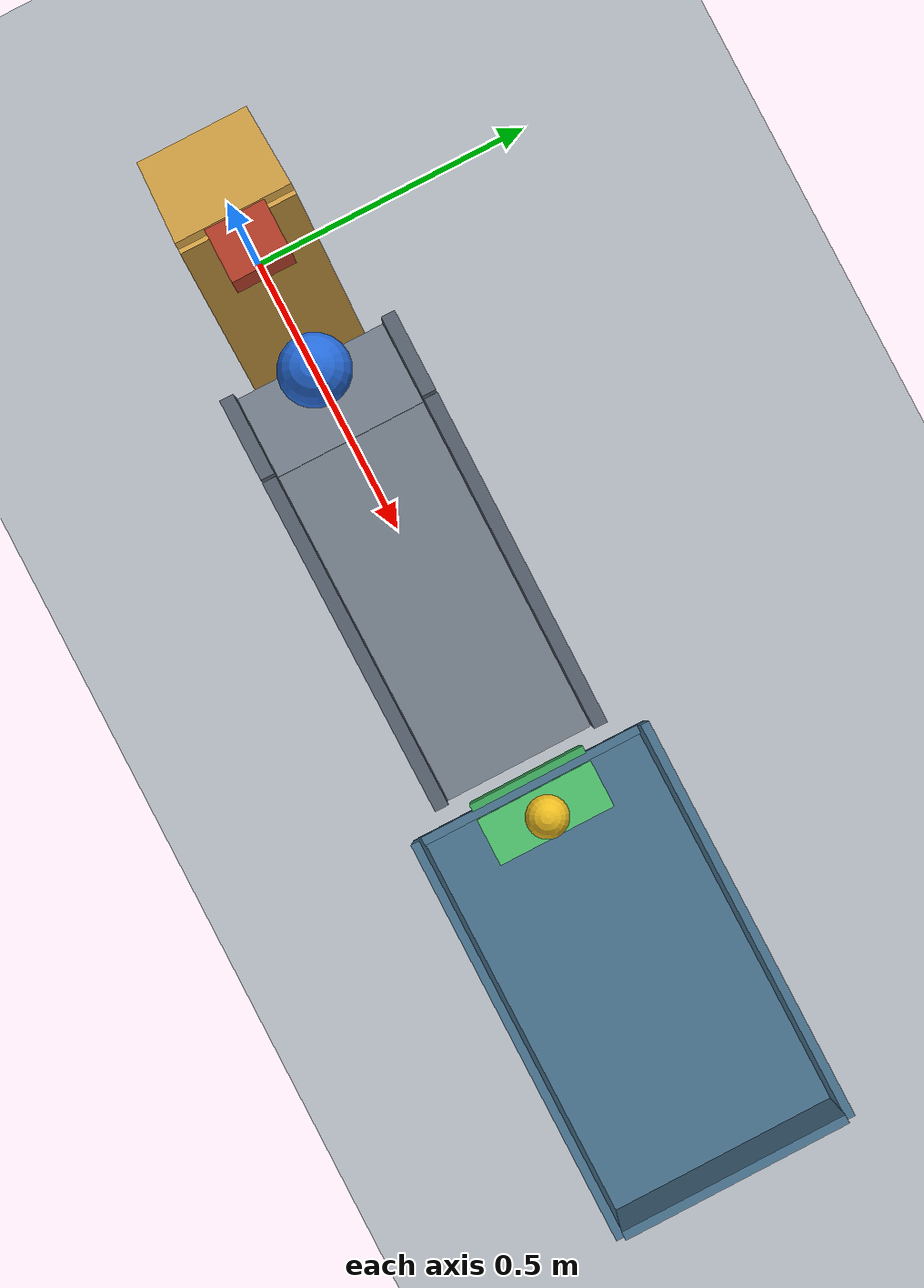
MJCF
<mujoco model="wedge_flap_release">
  <compiler angle="radian" autolimits="true"/>
  <option timestep="0.002" gravity="0 0 -9.81" integrator="implicitfast" solver="Newton" iterations="100" cone="elliptic" impratio="10"/>
  <size njmax="2000" nconmax="400"/>
  <visual>
    <headlight ambient="0.45 0.45 0.45" diffuse="0.7 0.7 0.7"/>
  </visual>

  <worldbody>
    <light name="overhead" pos="0.7 -1.5 2.5" dir="0 0 -1"/>
    <camera name="overview" pos="2.1 -2.6 1.8" xyaxes="0.88 0.47 0 -0.23 0.43 0.87"/>

    <geom name="floor" type="plane" size="3 3 0.1" friction="1.2 0.005 0.0001" solref="0.008 1" rgba="0.72 0.74 0.77 1"/>

    <!-- The block's underside starts 0.5 m above its first contact with the wedge. -->
    <body name="block" pos="0.14 0 0.818745">
      <freejoint name="block_free"/>
      <geom name="block_weight" type="box" size="0.04 0.045 0.04" mass="1.5" friction="1.2 0.005 0.0001" solref="0.006 1" rgba="0.72 0.24 0.16 1"/>
    </body>

    <!-- A loose, narrow-footed wedge assembled entirely from primitive solids. -->
    <body name="wedge" pos="0 0 0.03">
      <freejoint name="wedge_free"/>
      <geom name="wedge_foot" type="box" size="0.065 0.1 0.03" mass="0.07" friction="1.5 0.005 0.0001" solref="0.006 1" rgba="0.78 0.57 0.22 1"/>
      <geom name="wedge_stem" type="box" pos="0 0 0.064" size="0.025 0.085 0.034" mass="0.04" friction="1.2 0.005 0.0001" solref="0.006 1" rgba="0.78 0.57 0.22 1"/>
      <geom name="wedge_bottom" type="box" pos="0 0 0.11" size="0.20 0.1 0.012" mass="0.04" friction="1.2 0.005 0.0001" solref="0.006 1" rgba="0.85 0.65 0.28 1"/>
      <geom name="wedge_left_slope" type="box" pos="-0.1 0 0.23" quat="0.905589 0 -0.424155 0" size="0.156205 0.1 0.012" mass="0.05" friction="1.2 0.005 0.0001" solref="0.006 1" rgba="0.85 0.65 0.28 1"/>
      <geom name="wedge_right_slope" type="box" pos="0.1 0 0.23" quat="0.905589 0 0.424155 0" size="0.156205 0.1 0.012" mass="0.05" friction="1.2 0.005 0.0001" solref="0.006 1" rgba="0.85 0.65 0.28 1"/>
    </body>

    <!-- The level starting shelf keeps ball1 still until the wedge strikes it. -->
    <body name="ball1" pos="0.245 0 0.285">
      <freejoint name="ball1_free"/>
      <geom name="ball1_sphere" type="sphere" size="0.06" mass="0.30" friction="0.35 0.001 0.00002" solref="0.008 1" rgba="0.15 0.42 0.85 1"/>
    </body>

    <body name="ramp" pos="0 0 0">
      <geom name="ramp_start_shelf" type="box" pos="0.29 0 0.215" size="0.07 0.13 0.01" friction="0.35 0.001 0.00002" solref="0.008 1" rgba="0.47 0.51 0.56 1"/>
      <geom name="ramp_slope" type="box" pos="0.648974 0 0.174566" quat="0.997929 0 0.064264 0" size="0.292414 0.13 0.008" friction="0.35 0.001 0.00002" solref="0.008 1" rgba="0.47 0.51 0.56 1"/>
      <geom name="ramp_start_rail_left" type="box" pos="0.29 0.142 0.255" size="0.07 0.012 0.035" friction="0.35 0.001 0.00002" rgba="0.35 0.39 0.44 1"/>
      <geom name="ramp_start_rail_right" type="box" pos="0.29 -0.142 0.255" size="0.07 0.012 0.035" friction="0.35 0.001 0.00002" rgba="0.35 0.39 0.44 1"/>
      <geom name="ramp_slope_rail_left" type="box" pos="0.65 0.142 0.2145" quat="0.997929 0 0.064264 0" size="0.292414 0.012 0.04" friction="0.35 0.001 0.00002" rgba="0.35 0.39 0.44 1"/>
      <geom name="ramp_slope_rail_right" type="box" pos="0.65 -0.142 0.2145" quat="0.997929 0 0.064264 0" size="0.292414 0.012 0.04" friction="0.35 0.001 0.00002" rgba="0.35 0.39 0.44 1"/>
    </body>

    <!-- Hinge friction holds the loaded flap upright; ball1 supplies the release impulse. -->
    <body name="flap" pos="0.965 0 0.11">
      <joint name="flap_hinge" type="hinge" axis="0 1 0" limited="true" range="0 1.45" frictionloss="0.027" damping="0.001" armature="0.00002" solreflimit="0.006 1" solimplimit="0.98 0.999 0.001"/>
      <geom name="flap_striker_panel" type="box" pos="0 0 0.08" size="0.006 0.10 0.08" mass="0.020" friction="0.45 0.001 0.00002" solref="0.006 1" rgba="0.23 0.65 0.35 1"/>
      <geom name="flap_release_shelf" type="box" pos="0.060 0 0.164" size="0.040 0.10 0.005" mass="0.008" friction="0.18 0.001 0.00002" solref="0.006 1" rgba="0.30 0.75 0.42 1"/>
    </body>

    <body name="ball2" pos="1.030 0 0.314">
      <freejoint name="ball2_free"/>
      <geom name="ball2_sphere" type="sphere" size="0.035" mass="0.025" friction="0.65 0.003 0.0001" solref="0.012 1" rgba="0.92 0.73 0.12 1"/>
    </body>

    <!-- The low entrance wall clears the flap's sweep; taller sides retain the released ball. -->
    <body name="cup" pos="0 0 0">
      <geom name="cup_bottom" type="box" pos="1.33 0 0.0125" size="0.355 0.215 0.0125" friction="0.8 0.005 0.0002" solref="0.015 1" rgba="0.28 0.44 0.55 1"/>
      <geom name="cup_left_wall" type="box" pos="0.9825 0 0.045" size="0.0075 0.20 0.020" friction="0.8 0.005 0.0002" solref="0.015 1" rgba="0.28 0.44 0.55 1"/>
      <geom name="cup_right_wall" type="box" pos="1.6775 0 0.115" size="0.0075 0.20 0.090" friction="0.8 0.005 0.0002" solref="0.015 1" rgba="0.28 0.44 0.55 1"/>
      <geom name="cup_front_wall" type="box" pos="1.33 -0.2075 0.10" size="0.355 0.0075 0.075" friction="0.8 0.005 0.0002" solref="0.015 1" rgba="0.28 0.44 0.55 1"/>
      <geom name="cup_back_wall" type="box" pos="1.33 0.2075 0.10" size="0.355 0.0075 0.075" friction="0.8 0.005 0.0002" solref="0.015 1" rgba="0.28 0.44 0.55 1"/>
    </body>
  </worldbody>

  <keyframe>
    <key name="start"/>
  </keyframe>
</mujoco>
